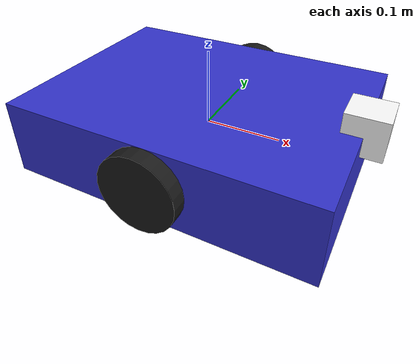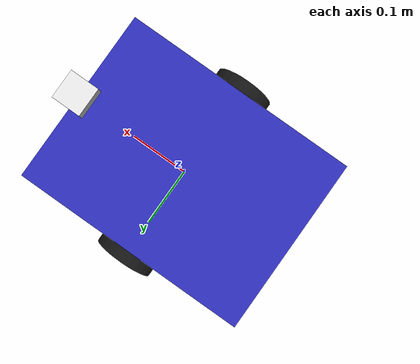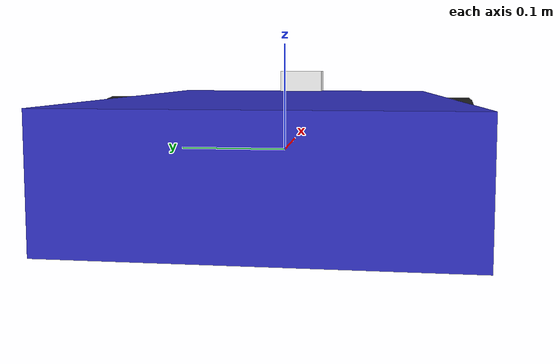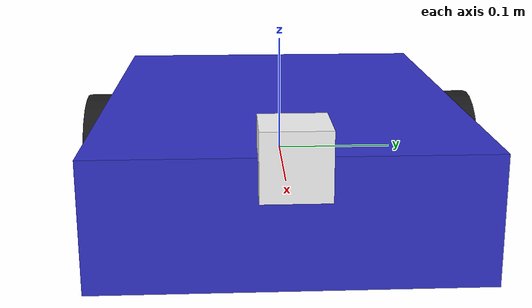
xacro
<?xml version="1.0"?>
<robot xmlns:xacro="http://www.ros.org/wiki/xacro" name="hovercraft">

    <xacro:property name="PI" value="3.1415926535897931"/>

    <xacro:property name="body_width" value="0.3" />
    <xacro:property name="body_length" value="0.4" />
    <xacro:property name="body_height" value="0.1" />

    <xacro:property name="wheel_radius" value="0.05" />
    <xacro:property name="wheel_width" value="0.04" />

    <material name="blue"><color rgba="0.2 0.2 0.8 1"/></material>
    <material name="black"><color rgba="0.1 0.1 0.1 1"/></material>
    <material name="white"><color rgba="1 1 1 1"/></material>

    <link name="base_link">
        <visual>
            <geometry><box size="${body_length} ${body_width} ${body_height}"/></geometry>
            <material name="blue"/>
        </visual>
        <collision>
            <geometry><box size="${body_length} ${body_width} ${body_height}"/></geometry>
        </collision>
        <inertial>
            <mass value="5"/>
            <origin xyz="0 0 0" rpy="0 0 0"/>
            <inertia ixx="0.1" ixy="0" ixz="0" iyy="0.1" iyz="0" izz="0.1" />
        </inertial>
    </link>

    <link name="right_wheel_link">
        <visual>
            <origin xyz="0 0 0" rpy="${PI/2} 0 0"/>
            <geometry><cylinder radius="${wheel_radius}" length="${wheel_width}"/></geometry>
            <material name="black"/>
        </visual>
        <collision>
            <origin xyz="0 0 0" rpy="${PI/2} 0 0"/>
            <geometry><cylinder radius="${wheel_radius}" length="${wheel_width}"/></geometry>
        </collision>
        <inertial>
            <mass value="0.5"/>
            <inertia ixx="0.001" ixy="0" ixz="0" iyy="0.001" iyz="0" izz="0.001" />
        </inertial>
    </link>

    <link name="left_wheel_link">
        <visual>
            <origin xyz="0 0 0" rpy="${PI/2} 0 0"/>
            <geometry><cylinder radius="${wheel_radius}" length="${wheel_width}"/></geometry>
            <material name="black"/>
        </visual>
        <collision>
            <origin xyz="0 0 0" rpy="${PI/2} 0 0"/>
            <geometry><cylinder radius="${wheel_radius}" length="${wheel_width}"/></geometry>
        </collision>
        <inertial>
            <mass value="0.5"/>
            <inertia ixx="0.001" ixy="0" ixz="0" iyy="0.001" iyz="0" izz="0.001" />
        </inertial>
    </link>

    <link name="camera_link">
        <visual><geometry><box size="0.05 0.05 0.05"/></geometry><material name="white"/></visual>
        <collision><geometry><box size="0.05 0.05 0.05"/></geometry></collision>
        <inertial><mass value="0.1" /><inertia ixx="1e-6" ixy="0" ixz="0" iyy="1e-6" iyz="0" izz="1e-6" /></inertial>
    </link>

    <joint name="right_wheel_joint" type="continuous">
        <parent link="base_link"/>
        <child link="right_wheel_link"/>
        <origin xyz="0 -${body_width/2} 0" rpy="0 0 0"/>
        <axis xyz="0 1 0"/>
    </joint>

    <joint name="left_wheel_joint" type="continuous">
        <parent link="base_link"/>
        <child link="left_wheel_link"/>
        <origin xyz="0 ${body_width/2} 0" rpy="0 0 0"/>
        <axis xyz="0 1 0"/>
    </joint>

    <joint name="camera_joint" type="fixed">
        <parent link="base_link"/>
        <child link="camera_link"/>
        <origin xyz="${body_length/2} 0 ${body_height/2}" rpy="0 0 0"/>
    </joint>

    <transmission name="right_wheel_transmission">
        <type>transmission_interface/SimpleTransmission</type>
        <joint name="right_wheel_joint">
            <hardwareInterface>hardware_interface/VelocityJointInterface</hardwareInterface>
        </joint>
        <actuator name="right_wheel_actuator">
            <hardwareInterface>hardware_interface/VelocityJointInterface</hardwareInterface>
            <mechanicalReduction>1</mechanicalReduction>
        </actuator>
    </transmission>

    <transmission name="left_wheel_transmission">
        <type>transmission_interface/SimpleTransmission</type>
        <joint name="left_wheel_joint">
            <hardwareInterface>hardware_interface/VelocityJointInterface</hardwareInterface>
        </joint>
        <actuator name="left_wheel_actuator">
            <hardwareInterface>hardware_interface/VelocityJointInterface</hardwareInterface>
            <mechanicalReduction>1</mechanicalReduction>
        </actuator>
    </transmission>

    <gazebo>
        <plugin name="diff_drive_controller" filename="libgazebo_ros_diff_drive.so">
            <alwaysOn>true</alwaysOn>
            <leftJoint>left_wheel_joint</leftJoint>
            <rightJoint>right_wheel_joint</rightJoint>
            <wheelSeparation>${body_width}</wheelSeparation>
            <wheelDiameter>${2*wheel_radius}</wheelDiameter>
            <torque>10</torque>
            <commandTopic>cmd_vel</commandTopic>
            <odometryTopic>odom</odometryTopic>
            <odometryFrame>odom</odometryFrame>
            <robotBaseFrame>base_link</robotBaseFrame>
        </plugin>
    </gazebo>

    <gazebo reference="camera_link">
        <sensor type="camera" name="camera_sensor">
            <update_rate>30.0</update_rate>
            <camera>
                <horizontal_fov>1.396</horizontal_fov>
                <image><width>800</width><height>800</height></image>
                <clip><near>0.02</near><far>300</far></clip>
            </camera>
            <plugin name="camera_controller" filename="libgazebo_ros_camera.so">
                <alwaysOn>true</alwaysOn>
                <cameraName>hovercraft/camera</cameraName>
                <imageTopicName>image_raw</imageTopicName>
                <cameraInfoTopicName>camera_info</cameraInfoTopicName>
                <frameName>camera_link</frameName>
            </plugin>
        </sensor>
    </gazebo>

</robot>
